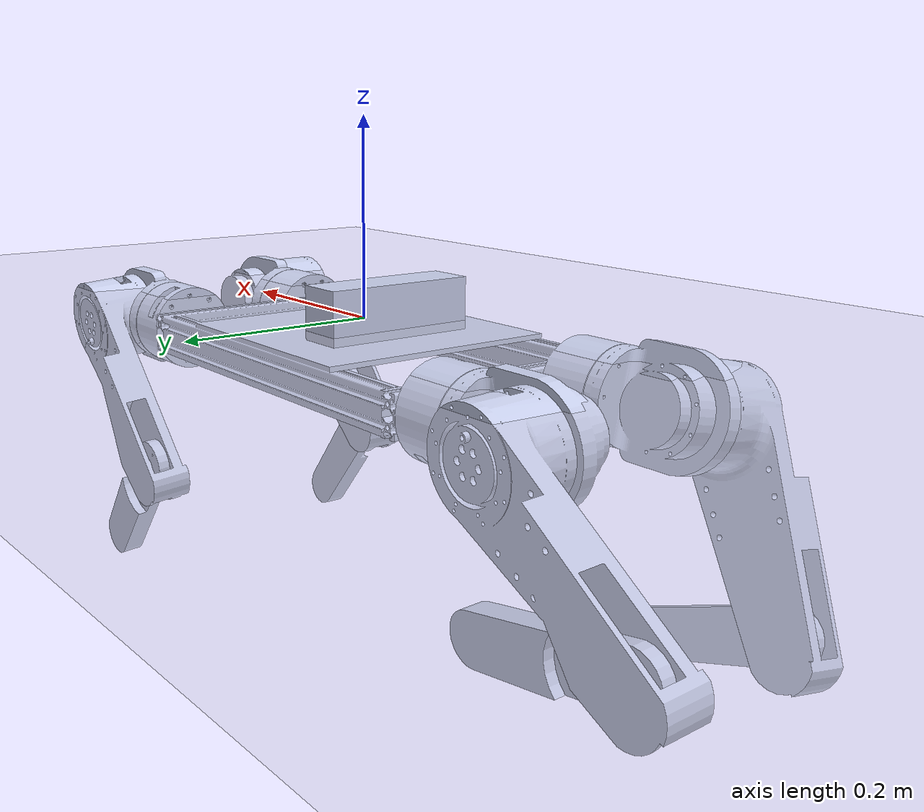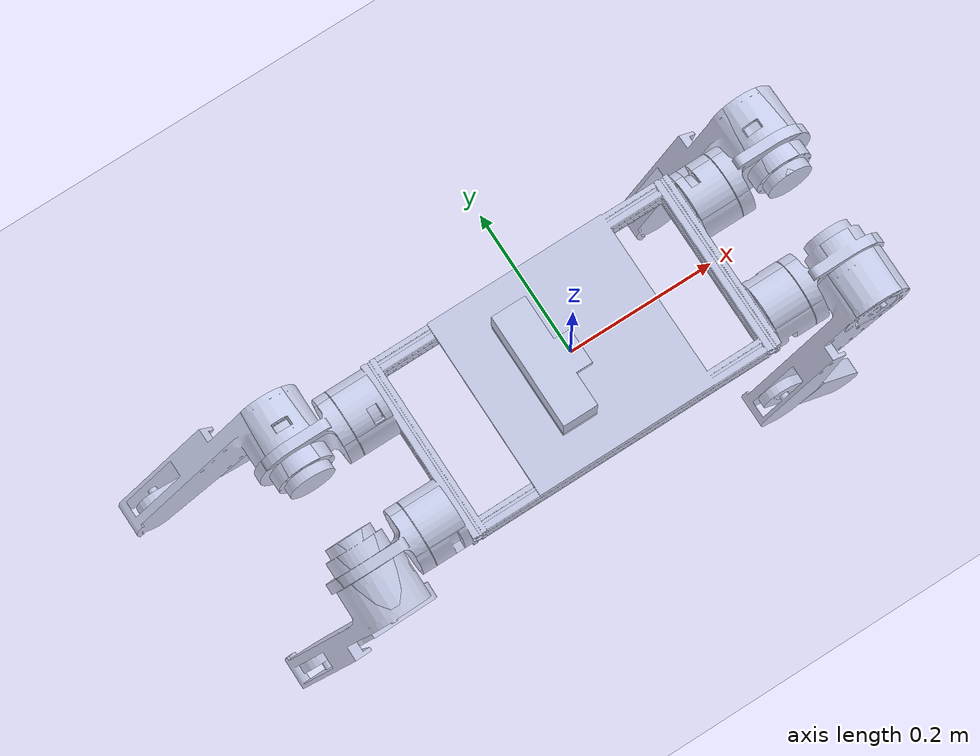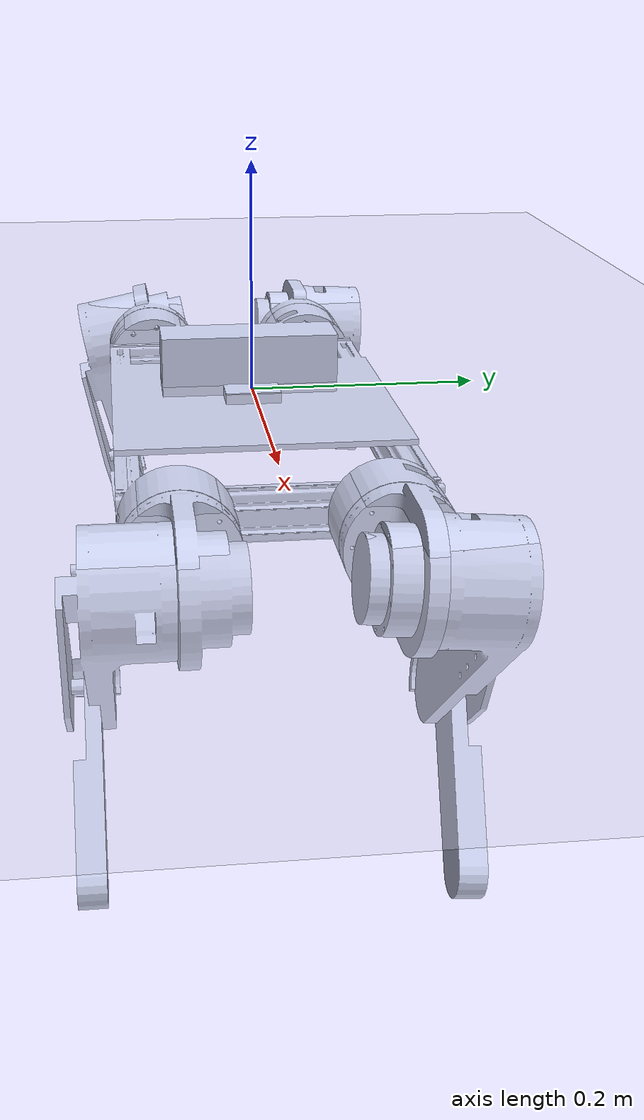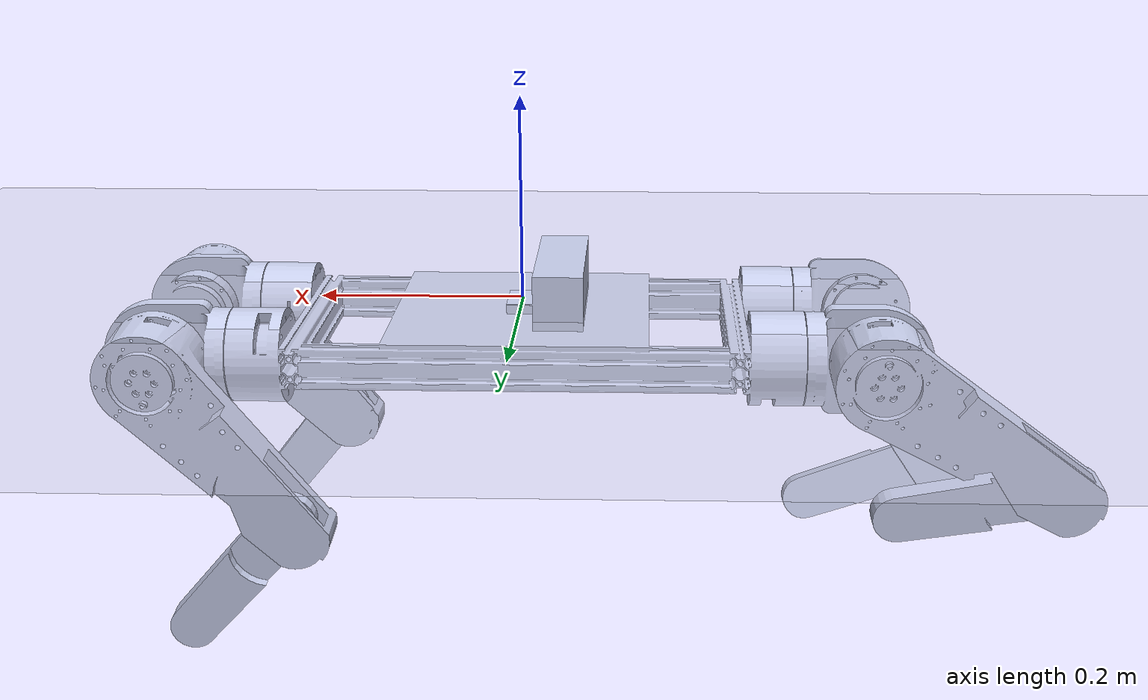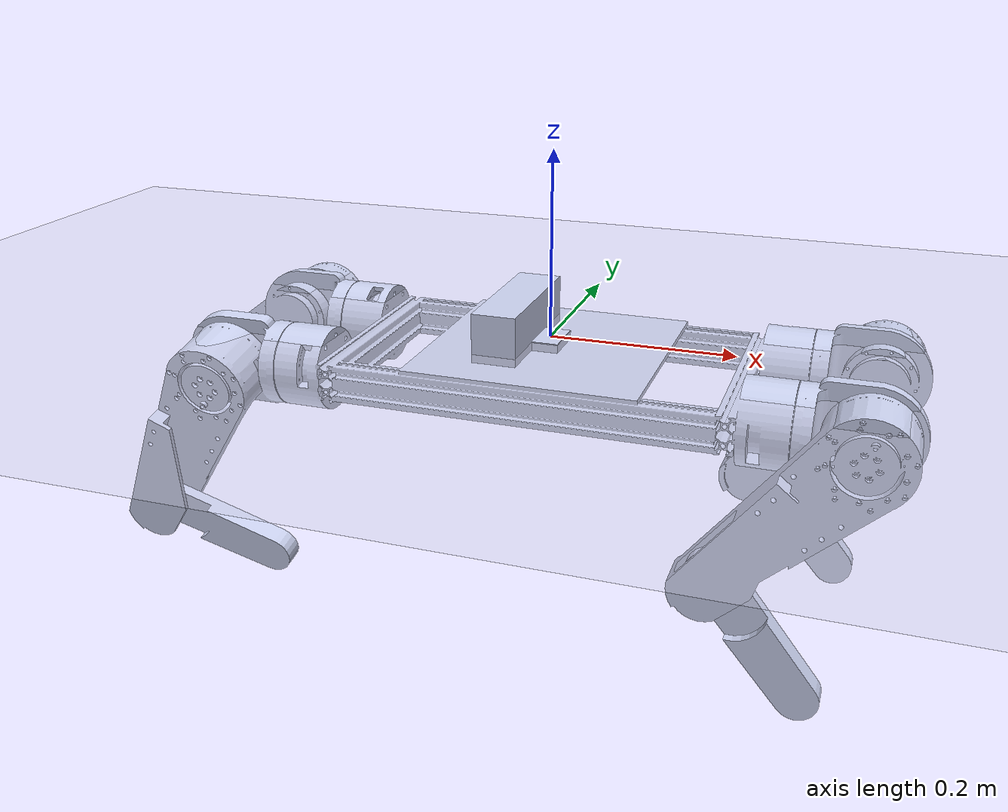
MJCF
<?xml version="1.0" encoding="UTF-8"?>
<mujoco model="Ares">
  <compiler angle="radian" coordinate="local" inertiafromgeom="false" balanceinertia="true" meshdir="../../model/Ares/meshes"/>
  <option timestep="0.001" gravity="0 0 -9.81" integrator="implicitfast"/>
  <default>
    <joint damping="0.1" armature="0.01" limited="true"/>
    <geom friction="1 0.5 0.1" condim="3" rgba="0.8 0.8 0.9 1" density="0"/>
    <motor ctrllimited="true"/>
  </default>
  <asset>
    <texture name="blue_checker" type="2d" builtin="checker" rgb1="0.05 0.16 0.38" rgb2="0.45 0.68 1" width="512" height="512"/>
    <material name="blue_checker" texture="blue_checker" texrepeat="8 8" reflectance="0.12"/>
    <mesh name="base_link" file="base_link.STL"/>
    <mesh name="lf_hip_link" file="lf_hip_link.STL"/>
    <mesh name="lf_thigh_link" file="lf_thigh_link.STL"/>
    <mesh name="lf_calf_link" file="lf_calf_link.STL"/>
    <mesh name="rf_hip_link" file="rf_hip_link.STL"/>
    <mesh name="rf_thigh_link" file="rf_thigh_link.STL"/>
    <mesh name="rf_calf_ink" file="rf_calf_ink.STL"/>
    <mesh name="lb_hip_link" file="lb_hip_link.STL"/>
    <mesh name="lb_thigh_link" file="lb_thigh_link.STL"/>
    <mesh name="lb_calf_link" file="lb_calf_link.STL"/>
    <mesh name="rb_hip_link" file="rb_hip_link.STL"/>
    <mesh name="rb_thigh_link" file="rb_thigh_link.STL"/>
    <mesh name="rb_calf_link" file="rb_calf_link.STL"/>
  </asset>
  <worldbody>
    <geom name="floor" type="plane" size="8 8 0.1" material="blue_checker" contype="1" conaffinity="2" friction="1 0.5 0.1"/>
    <body name="base_link" pos="0 0 0">
      <freejoint/>
      <site name="imu_site" pos="0 0 0" size="0.01" rgba="0 0 0 0"/>
      <inertial pos="-0.0045395 1.4255e-05 -0.026741" mass="3.8065" fullinertia="0.028212 0.151792 0.174225 1e-06 0.001285 1e-06"/>
      <geom name="base_link_geom" type="mesh" mesh="base_link" pos="0 0 0" euler="0 0 0" rgba="0.79216 0.81961 0.93333 1" contype="2" conaffinity="1"/>
      <body name="lf_hip_link" pos="0.2725 0.08 -0.035336" quat="1 0 0 0">
        <joint name="lf_hip_base_joint" type="hinge" axis="1 0 0" limited="true" range="-0.5 1.57"/>
        <inertial pos="0.049383 -0.008743 0.0008623" mass="0.518" fullinertia="0.000349 0.000641 0.000534 6.7e-05 0 0"/>
        <geom name="lf_hip_link_geom" type="mesh" mesh="lf_hip_link" pos="0 0 0" euler="0 0 0" rgba="0.79216 0.81961 0.93333 1" contype="2" conaffinity="1"/>
        <body name="lf_thigh_link" pos="0.069954 0.00049822 -4.2121e-05" quat="0.70710548 0 0 0.70710808">
          <joint name="lf_thigh_hip_joint" type="hinge" axis="-0.99645 0 0.084242" limited="true" range="-2.35 2.35"/>
          <inertial pos="0.04587 0.044351 -0.05262" mass="0.303" fullinertia="0.000518 0.00187 0.001659 0.000253 0.000493 0.000103"/>
          <geom name="lf_thigh_link_geom" type="mesh" mesh="lf_thigh_link" pos="0 0 0" euler="0 0 0" rgba="0.79216 0.81961 0.93333 1" contype="2" conaffinity="1"/>
          <body name="lf_calf_link" pos="0.058001 0.12479 -0.14869" quat="1 0 0 0">
            <joint name="lf_calf_thigh_joint" type="hinge" axis="-0.99645 0 0.084242" limited="true" range="-0.9 0.75"/>
            <inertial pos="-0.0042146 -0.055056 -0.06235" mass="0.15779" fullinertia="0.000294 0.000466 0.000184 -1e-05 0.000196 1.3e-05"/>
            <geom name="lf_calf_link_geom" type="mesh" mesh="lf_calf_link" pos="0 0 0" euler="0 0 0" rgba="0.79216 0.81961 0.93333 1" contype="2" conaffinity="1"/>
            <site name="lf_calf_link_foot_site" pos="0.00270134 -0.0977853 -0.13423489" size="0.005" rgba="0 0 0 0"/>
          </body>
        </body>
      </body>
      <body name="rf_hip_link" pos="0.2725 -0.08 -0.034664" quat="1 0 0 0">
        <joint name="rf_hip_base_joint" type="hinge" axis="1 0 0" limited="true" range="-1.57 0.5"/>
        <inertial pos="0.049377 0.0087846 -0.0001227" mass="0.518" fullinertia="0.000349 0.000641 0.000534 -6.8e-05 0 0"/>
        <geom name="rf_hip_link_geom" type="mesh" mesh="rf_hip_link" pos="0 0 0" euler="0 0 0" rgba="0.79216 0.81961 0.93333 1" contype="2" conaffinity="1"/>
        <body name="rf_thigh_link" pos="0.069954 -0.0005 0" quat="0.70710548 0 0 -0.70710808">
          <joint name="rf_thigh_hip_joint" type="hinge" axis="-1 0 0" limited="true" range="-2.35 2.35"/>
          <inertial pos="0.050131 -0.045996 -0.046895" mass="0.30338" fullinertia="0.000445 0.00187 0.001732 -0.000265 -0.000392 6.6e-05"/>
          <geom name="rf_thigh_link_geom" type="mesh" mesh="rf_thigh_link" pos="0 0 0" euler="0 0 0" rgba="0.79216 0.81961 0.93333 1" contype="2" conaffinity="1"/>
          <body name="rf_calf_ink" pos="0.070321 -0.13012 -0.13845" quat="1 0 0 0">
            <joint name="rf_calf_thigh_joint" type="hinge" axis="-1 0 0" limited="true" range="-0.7 0.9"/>
            <inertial pos="0.0010529 0.052087 -0.064979" mass="0.15779" fullinertia="0.000375 0.000466 0.000103 7e-06 0.000152 1.5e-05"/>
            <geom name="rf_calf_ink_geom" type="mesh" mesh="rf_calf_ink" pos="0 0 0" euler="0 0 0" rgba="0.79216 0.81961 0.93333 1" contype="2" conaffinity="1"/>
            <site name="rf_calf_ink_foot_site" pos="0.014 0.09244062 -0.13785985" size="0.005" rgba="0 0 0 0"/>
          </body>
        </body>
      </body>
      <body name="lb_hip_link" pos="-0.2725 0.08 -0.034664" quat="-3.6732051e-06 -0 0 1">
        <joint name="lb_hip_base_joint" type="hinge" axis="1 0 0" limited="true" range="-1.57 0.5"/>
        <inertial pos="0.049383 0.0087802 0.00030416" mass="0.518" fullinertia="0.000349 0.000641 0.000534 -6.7e-05 0 0"/>
        <geom name="lb_hip_link_geom" type="mesh" mesh="lb_hip_link" pos="0 0 0" euler="0 0 0" rgba="0.79216 0.81961 0.93333 1" contype="2" conaffinity="1"/>
        <body name="lb_thigh_link" pos="0.069954 -0.00049941 -2.4287e-05" quat="0.70710548 0 0 -0.70710808">
          <joint name="lb_thigh_hip_joint" type="hinge" axis="-0.99882 0 0.048575" limited="true" range="-2.35 2.35"/>
          <inertial pos="0.046986 0.041032 -0.027151" mass="0.713" fullinertia="0.001156 0.002863 0.002142 0.000298 -0.000991 0.000175"/>
          <geom name="lb_thigh_link_geom" type="mesh" mesh="lb_thigh_link" pos="0 0 0" euler="0 0 0" rgba="0.79216 0.81961 0.93333 1" contype="2" conaffinity="1"/>
          <body name="lb_calf_link" pos="0.065273 0.16017 -0.1055" quat="0.99970484 0 0.024294609 0">
            <joint name="lb_calf_thigh_joint" type="hinge" axis="-1 0 0" limited="true" range="-1.65 -0.13"/>
            <inertial pos="0.0010529 -0.082078 -0.014093" mass="0.15779" fullinertia="4.7e-05 0.000466 0.0004307 -1.6e-05 6.8e-05 3e-06"/>
            <geom name="lb_calf_link_geom" type="mesh" mesh="lb_calf_link" pos="0 0 0" euler="0 0 0" rgba="0.79216 0.81961 0.93333 1" contype="2" conaffinity="1"/>
            <site name="lb_calf_link_foot_site" pos="-0.0085 -0.14850305 -0.04749628" size="0.005" rgba="0 0 0 0"/>
          </body>
        </body>
      </body>
      <body name="rb_hip_link" pos="-0.2725 -0.08 -0.035336" quat="-3.6732051e-06 0 -0 -1">
        <joint name="rb_hip_base_joint" type="hinge" axis="1 0 0" limited="true" range="-0.5 1.57"/>
        <inertial pos="0.049377 -0.0085897 0.0018443" mass="0.518" fullinertia="0.000349 0.000641 0.000534 6.8e-05 0 0"/>
        <geom name="rb_hip_link_geom" type="mesh" mesh="rb_hip_link" pos="0 0 0" euler="0 0 0" rgba="0.79216 0.81961 0.93333 1" contype="2" conaffinity="1"/>
        <body name="rb_thigh_link" pos="0.069954 0.00049028 -9.8127e-05" quat="0.70710548 0 0 0.70710808">
          <joint name="rb_thigh_hip_joint" type="hinge" axis="-0.98055 0 0.19625" limited="true" range="-2.35 2.35"/>
          <inertial pos="0.038079 -0.033629 -0.065183" mass="0.30338" fullinertia="0.001513 0.001869 0.000664 0.000135 -0.000623 -0.000238"/>
          <geom name="rb_thigh_link_geom" type="mesh" mesh="rb_thigh_link" pos="0 0 0" euler="0 0 0" rgba="0.79216 0.81961 0.93333 1" contype="2" conaffinity="1"/>
          <body name="rb_calf_link" pos="0.036523 -0.093767 -0.17584" quat="0.99512621 0 0.098609486 0">
            <joint name="rb_calf_thigh_joint" type="hinge" axis="-1 0 0" limited="true" range="-0.45 1.35"/>
            <inertial pos="0.0010529 0.078964 -0.026457" mass="0.15779" fullinertia="7.6e-05 0.000466 0.00040158 1.6e-05 0.000123 -5e-06"/>
            <geom name="rb_calf_link_geom" type="mesh" mesh="rb_calf_link" pos="0 0 0" euler="0 0 0" rgba="0.79216 0.81961 0.93333 1" contype="2" conaffinity="1"/>
            <site name="rb_calf_link_foot_site" pos="-0.0085 0.14041879 -0.06946962" size="0.005" rgba="0 0 0 0"/>
          </body>
        </body>
      </body>
    </body>
  </worldbody>
  <sensor>
    <gyro site="imu_site"/>
    <accelerometer site="imu_site"/>
  </sensor>
  <actuator>
    <motor name="lf_hip_base_joint_motor" joint="lf_hip_base_joint" gear="1" ctrlrange="-17 17"/>
    <motor name="lf_thigh_hip_joint_motor" joint="lf_thigh_hip_joint" gear="1" ctrlrange="-17 17"/>
    <motor name="lf_calf_thigh_joint_motor" joint="lf_calf_thigh_joint" gear="1" ctrlrange="-17 17"/>
    <motor name="rf_hip_base_joint_motor" joint="rf_hip_base_joint" gear="1" ctrlrange="-17 17"/>
    <motor name="rf_thigh_hip_joint_motor" joint="rf_thigh_hip_joint" gear="1" ctrlrange="-17 17"/>
    <motor name="rf_calf_thigh_joint_motor" joint="rf_calf_thigh_joint" gear="1" ctrlrange="-17 17"/>
    <motor name="lb_hip_base_joint_motor" joint="lb_hip_base_joint" gear="1" ctrlrange="-17 17"/>
    <motor name="lb_thigh_hip_joint_motor" joint="lb_thigh_hip_joint" gear="1" ctrlrange="-17 17"/>
    <motor name="lb_calf_thigh_joint_motor" joint="lb_calf_thigh_joint" gear="1" ctrlrange="-17 17"/>
    <motor name="rb_hip_base_joint_motor" joint="rb_hip_base_joint" gear="1" ctrlrange="-17 17"/>
    <motor name="rb_thigh_hip_joint_motor" joint="rb_thigh_hip_joint" gear="1" ctrlrange="-17 17"/>
    <motor name="rb_calf_thigh_joint_motor" joint="rb_calf_thigh_joint" gear="1" ctrlrange="-17 17"/>
  </actuator>
  <keyframe>
    <key name="stand" qpos="0 0 0.8 1 0 0 0 0.1 0.17 0.04 -0.02 -0.25 -0.04 -0.05 0.44 -0.87 0.16 0.04 0.25"/>
    <key name="crouch" qpos="0 0 0.45 1 0 0 0 0.1 -1.33 0.6 -0.02 1.4 -0.7 -0.05 -1.24 -0.35 0.16 1.72 -0.25"/>
  </keyframe>
</mujoco>
